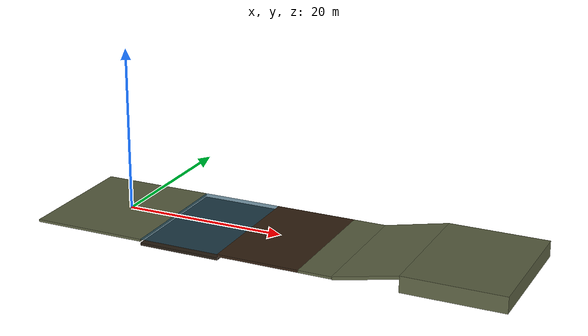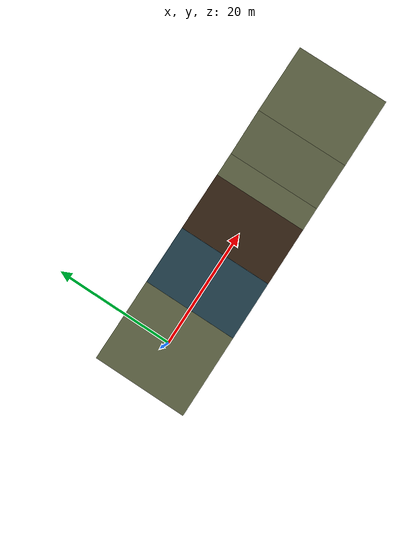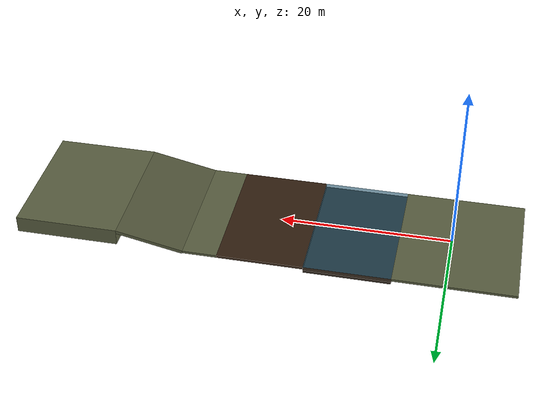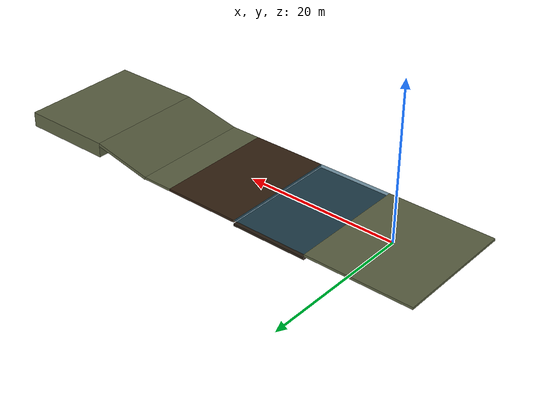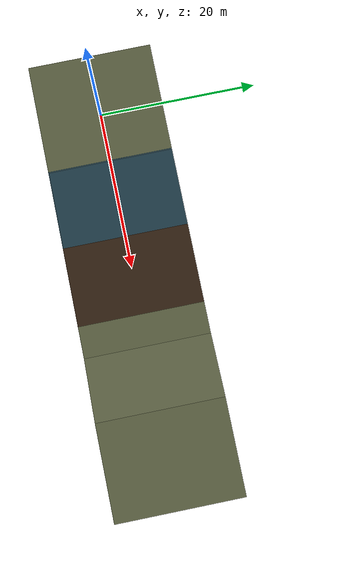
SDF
<sdf version="1.9">
 <world name="v3_transition_test">
  <physics name="1ms" type="dart">
   <max_step_size>0.001</max_step_size>
   <real_time_factor>1.0</real_time_factor>
   <dart><collision_detector>bullet</collision_detector></dart>
  </physics>
  <gravity>0 0 -9.81</gravity>
  <spherical_coordinates>
   <surface_model>EARTH_WGS84</surface_model>
   <latitude_deg>1.4466</latitude_deg>
   <longitude_deg>103.7300</longitude_deg>
   <elevation>0</elevation>
   <heading_deg>0</heading_deg>
  </spherical_coordinates>
  <plugin filename="gz-sim-physics-system" name="gz::sim::systems::Physics"/>
  <plugin filename="gz-sim-user-commands-system" name="gz::sim::systems::UserCommands"/>
  <plugin filename="gz-sim-scene-broadcaster-system" name="gz::sim::systems::SceneBroadcaster"/>
  <plugin filename="gz-sim-imu-system" name="gz::sim::systems::Imu"/>
  <plugin filename="gz-sim-navsat-system" name="gz::sim::systems::NavSat"/>
  <plugin filename="gz-sim-sensors-system" name="gz::sim::systems::Sensors">
   <render_engine>ogre2</render_engine>
  </plugin>
  <plugin filename="gz-sim-buoyancy-system" name="gz::sim::systems::Buoyancy">
   <graded_buoyancy>
    <default_density>1000</default_density>
    <density_change><above_depth>0.0</above_depth><density>1.2</density></density_change>
   </graded_buoyancy>
   <enable>hovercraft_v3::base_link</enable>
   <enable>hovercraft_v3::skirt</enable>
  </plugin>
  <plugin filename="tidal_vehicle_plugins" name="hover::TerrainZones">
   <ground_height>0.0</ground_height>
   <zone><name>channel</name><type>WATER</type><min>6 -8</min><max>16 8</max><level>0.0</level></zone>
   <zone><name>mudflat</name><type>MUD</type><min>16 -8</min><max>26 8</max></zone>
  </plugin>
  <plugin filename="tidal_vehicle_plugins" name="hover::ScriptedCommands">
   <command>
    <time>0.5</time>
    <topic>/model/hovercraft_v3/hover_enabled</topic>
    <type>gz.msgs.Boolean</type>
    <data>data: true</data>
   </command>
   <command>
    <time>3.0</time>
    <topic>/model/hovercraft_v3/tracks_cmd</topic>
    <type>gz.msgs.Double</type>
    <data>data: 0.250</data>
   </command>
   <command>
    <time>7.0</time>
    <topic>/model/hovercraft_v3/cmd_vel_hover</topic>
    <type>gz.msgs.Twist</type>
    <data>linear { x: 1.5 } angular { z: 0.0 }</data>
   </command>
   <command>
    <time>7.2</time>
    <topic>/model/hovercraft_v3/cmd_vel_hover</topic>
    <type>gz.msgs.Twist</type>
    <data>linear { x: 1.5 } angular { z: 0.0 }</data>
   </command>
   <command>
    <time>7.4</time>
    <topic>/model/hovercraft_v3/cmd_vel_hover</topic>
    <type>gz.msgs.Twist</type>
    <data>linear { x: 1.5 } angular { z: 0.0 }</data>
   </command>
   <command>
    <time>7.6</time>
    <topic>/model/hovercraft_v3/cmd_vel_hover</topic>
    <type>gz.msgs.Twist</type>
    <data>linear { x: 1.5 } angular { z: 0.0 }</data>
   </command>
   <command>
    <time>7.8</time>
    <topic>/model/hovercraft_v3/cmd_vel_hover</topic>
    <type>gz.msgs.Twist</type>
    <data>linear { x: 1.5 } angular { z: 0.0 }</data>
   </command>
   <command>
    <time>8.0</time>
    <topic>/model/hovercraft_v3/cmd_vel_hover</topic>
    <type>gz.msgs.Twist</type>
    <data>linear { x: 1.5 } angular { z: 0.0 }</data>
   </command>
   <command>
    <time>8.2</time>
    <topic>/model/hovercraft_v3/cmd_vel_hover</topic>
    <type>gz.msgs.Twist</type>
    <data>linear { x: 1.5 } angular { z: 0.0 }</data>
   </command>
   <command>
    <time>8.4</time>
    <topic>/model/hovercraft_v3/cmd_vel_hover</topic>
    <type>gz.msgs.Twist</type>
    <data>linear { x: 1.5 } angular { z: 0.0 }</data>
   </command>
   <command>
    <time>8.6</time>
    <topic>/model/hovercraft_v3/cmd_vel_hover</topic>
    <type>gz.msgs.Twist</type>
    <data>linear { x: 1.5 } angular { z: 0.0 }</data>
   </command>
   <command>
    <time>8.8</time>
    <topic>/model/hovercraft_v3/cmd_vel_hover</topic>
    <type>gz.msgs.Twist</type>
    <data>linear { x: 1.5 } angular { z: 0.0 }</data>
   </command>
   <command>
    <time>9.0</time>
    <topic>/model/hovercraft_v3/cmd_vel_hover</topic>
    <type>gz.msgs.Twist</type>
    <data>linear { x: 1.5 } angular { z: 0.0 }</data>
   </command>
   <command>
    <time>9.2</time>
    <topic>/model/hovercraft_v3/cmd_vel_hover</topic>
    <type>gz.msgs.Twist</type>
    <data>linear { x: 1.5 } angular { z: 0.0 }</data>
   </command>
   <command>
    <time>9.4</time>
    <topic>/model/hovercraft_v3/cmd_vel_hover</topic>
    <type>gz.msgs.Twist</type>
    <data>linear { x: 1.5 } angular { z: 0.0 }</data>
   </command>
   <command>
    <time>9.6</time>
    <topic>/model/hovercraft_v3/cmd_vel_hover</topic>
    <type>gz.msgs.Twist</type>
    <data>linear { x: 1.5 } angular { z: 0.0 }</data>
   </command>
   <command>
    <time>9.8</time>
    <topic>/model/hovercraft_v3/cmd_vel_hover</topic>
    <type>gz.msgs.Twist</type>
    <data>linear { x: 1.5 } angular { z: 0.0 }</data>
   </command>
   <command>
    <time>10.0</time>
    <topic>/model/hovercraft_v3/cmd_vel_hover</topic>
    <type>gz.msgs.Twist</type>
    <data>linear { x: 1.5 } angular { z: 0.0 }</data>
   </command>
   <command>
    <time>10.2</time>
    <topic>/model/hovercraft_v3/cmd_vel_hover</topic>
    <type>gz.msgs.Twist</type>
    <data>linear { x: 1.5 } angular { z: 0.0 }</data>
   </command>
   <command>
    <time>10.4</time>
    <topic>/model/hovercraft_v3/cmd_vel_hover</topic>
    <type>gz.msgs.Twist</type>
    <data>linear { x: 1.5 } angular { z: 0.0 }</data>
   </command>
   <command>
    <time>10.6</time>
    <topic>/model/hovercraft_v3/cmd_vel_hover</topic>
    <type>gz.msgs.Twist</type>
    <data>linear { x: 1.5 } angular { z: 0.0 }</data>
   </command>
   <command>
    <time>10.8</time>
    <topic>/model/hovercraft_v3/cmd_vel_hover</topic>
    <type>gz.msgs.Twist</type>
    <data>linear { x: 1.5 } angular { z: 0.0 }</data>
   </command>
   <command>
    <time>11.0</time>
    <topic>/model/hovercraft_v3/cmd_vel_hover</topic>
    <type>gz.msgs.Twist</type>
    <data>linear { x: 1.5 } angular { z: 0.0 }</data>
   </command>
   <command>
    <time>11.2</time>
    <topic>/model/hovercraft_v3/cmd_vel_hover</topic>
    <type>gz.msgs.Twist</type>
    <data>linear { x: 1.5 } angular { z: 0.0 }</data>
   </command>
   <command>
    <time>11.4</time>
    <topic>/model/hovercraft_v3/cmd_vel_hover</topic>
    <type>gz.msgs.Twist</type>
    <data>linear { x: 1.5 } angular { z: 0.0 }</data>
   </command>
   <command>
    <time>11.6</time>
    <topic>/model/hovercraft_v3/cmd_vel_hover</topic>
    <type>gz.msgs.Twist</type>
    <data>linear { x: 1.5 } angular { z: 0.0 }</data>
   </command>
   <command>
    <time>11.8</time>
    <topic>/model/hovercraft_v3/cmd_vel_hover</topic>
    <type>gz.msgs.Twist</type>
    <data>linear { x: 1.5 } angular { z: 0.0 }</data>
   </command>
   <command>
    <time>12.0</time>
    <topic>/model/hovercraft_v3/cmd_vel_hover</topic>
    <type>gz.msgs.Twist</type>
    <data>linear { x: 1.5 } angular { z: 0.0 }</data>
   </command>
   <command>
    <time>12.2</time>
    <topic>/model/hovercraft_v3/cmd_vel_hover</topic>
    <type>gz.msgs.Twist</type>
    <data>linear { x: 1.5 } angular { z: 0.0 }</data>
   </command>
   <command>
    <time>12.4</time>
    <topic>/model/hovercraft_v3/cmd_vel_hover</topic>
    <type>gz.msgs.Twist</type>
    <data>linear { x: 1.5 } angular { z: 0.0 }</data>
   </command>
   <command>
    <time>12.6</time>
    <topic>/model/hovercraft_v3/cmd_vel_hover</topic>
    <type>gz.msgs.Twist</type>
    <data>linear { x: 1.5 } angular { z: 0.0 }</data>
   </command>
   <command>
    <time>12.8</time>
    <topic>/model/hovercraft_v3/cmd_vel_hover</topic>
    <type>gz.msgs.Twist</type>
    <data>linear { x: 1.5 } angular { z: 0.0 }</data>
   </command>
   <command>
    <time>13.0</time>
    <topic>/model/hovercraft_v3/cmd_vel_hover</topic>
    <type>gz.msgs.Twist</type>
    <data>linear { x: 1.5 } angular { z: 0.0 }</data>
   </command>
   <command>
    <time>13.2</time>
    <topic>/model/hovercraft_v3/cmd_vel_hover</topic>
    <type>gz.msgs.Twist</type>
    <data>linear { x: 1.5 } angular { z: 0.0 }</data>
   </command>
   <command>
    <time>13.4</time>
    <topic>/model/hovercraft_v3/cmd_vel_hover</topic>
    <type>gz.msgs.Twist</type>
    <data>linear { x: 1.5 } angular { z: 0.0 }</data>
   </command>
   <command>
    <time>13.6</time>
    <topic>/model/hovercraft_v3/cmd_vel_hover</topic>
    <type>gz.msgs.Twist</type>
    <data>linear { x: 1.5 } angular { z: 0.0 }</data>
   </command>
   <command>
    <time>13.8</time>
    <topic>/model/hovercraft_v3/cmd_vel_hover</topic>
    <type>gz.msgs.Twist</type>
    <data>linear { x: 1.5 } angular { z: 0.0 }</data>
   </command>
   <command>
    <time>14.0</time>
    <topic>/model/hovercraft_v3/cmd_vel_hover</topic>
    <type>gz.msgs.Twist</type>
    <data>linear { x: 1.5 } angular { z: 0.0 }</data>
   </command>
   <command>
    <time>14.2</time>
    <topic>/model/hovercraft_v3/cmd_vel_hover</topic>
    <type>gz.msgs.Twist</type>
    <data>linear { x: 1.5 } angular { z: 0.0 }</data>
   </command>
   <command>
    <time>14.4</time>
    <topic>/model/hovercraft_v3/cmd_vel_hover</topic>
    <type>gz.msgs.Twist</type>
    <data>linear { x: 1.5 } angular { z: 0.0 }</data>
   </command>
   <command>
    <time>14.6</time>
    <topic>/model/hovercraft_v3/cmd_vel_hover</topic>
    <type>gz.msgs.Twist</type>
    <data>linear { x: 1.5 } angular { z: 0.0 }</data>
   </command>
   <command>
    <time>14.8</time>
    <topic>/model/hovercraft_v3/cmd_vel_hover</topic>
    <type>gz.msgs.Twist</type>
    <data>linear { x: 1.5 } angular { z: 0.0 }</data>
   </command>
   <command>
    <time>15.0</time>
    <topic>/model/hovercraft_v3/cmd_vel_hover</topic>
    <type>gz.msgs.Twist</type>
    <data>linear { x: 1.5 } angular { z: 0.0 }</data>
   </command>
   <command>
    <time>15.2</time>
    <topic>/model/hovercraft_v3/cmd_vel_hover</topic>
    <type>gz.msgs.Twist</type>
    <data>linear { x: 1.5 } angular { z: 0.0 }</data>
   </command>
   <command>
    <time>15.4</time>
    <topic>/model/hovercraft_v3/cmd_vel_hover</topic>
    <type>gz.msgs.Twist</type>
    <data>linear { x: 1.5 } angular { z: 0.0 }</data>
   </command>
   <command>
    <time>15.6</time>
    <topic>/model/hovercraft_v3/cmd_vel_hover</topic>
    <type>gz.msgs.Twist</type>
    <data>linear { x: 1.5 } angular { z: 0.0 }</data>
   </command>
   <command>
    <time>15.8</time>
    <topic>/model/hovercraft_v3/cmd_vel_hover</topic>
    <type>gz.msgs.Twist</type>
    <data>linear { x: 1.5 } angular { z: 0.0 }</data>
   </command>
   <command>
    <time>16.0</time>
    <topic>/model/hovercraft_v3/cmd_vel_hover</topic>
    <type>gz.msgs.Twist</type>
    <data>linear { x: 1.5 } angular { z: 0.0 }</data>
   </command>
   <command>
    <time>16.2</time>
    <topic>/model/hovercraft_v3/cmd_vel_hover</topic>
    <type>gz.msgs.Twist</type>
    <data>linear { x: 1.5 } angular { z: 0.0 }</data>
   </command>
   <command>
    <time>16.4</time>
    <topic>/model/hovercraft_v3/cmd_vel_hover</topic>
    <type>gz.msgs.Twist</type>
    <data>linear { x: 1.5 } angular { z: 0.0 }</data>
   </command>
   <command>
    <time>16.6</time>
    <topic>/model/hovercraft_v3/cmd_vel_hover</topic>
    <type>gz.msgs.Twist</type>
    <data>linear { x: 1.5 } angular { z: 0.0 }</data>
   </command>
   <command>
    <time>16.8</time>
    <topic>/model/hovercraft_v3/cmd_vel_hover</topic>
    <type>gz.msgs.Twist</type>
    <data>linear { x: 1.5 } angular { z: 0.0 }</data>
   </command>
   <command>
    <time>17.0</time>
    <topic>/model/hovercraft_v3/cmd_vel_hover</topic>
    <type>gz.msgs.Twist</type>
    <data>linear { x: 1.5 } angular { z: 0.0 }</data>
   </command>
   <command>
    <time>17.2</time>
    <topic>/model/hovercraft_v3/cmd_vel_hover</topic>
    <type>gz.msgs.Twist</type>
    <data>linear { x: 1.5 } angular { z: 0.0 }</data>
   </command>
   <command>
    <time>17.4</time>
    <topic>/model/hovercraft_v3/cmd_vel_hover</topic>
    <type>gz.msgs.Twist</type>
    <data>linear { x: 1.5 } angular { z: 0.0 }</data>
   </command>
   <command>
    <time>17.6</time>
    <topic>/model/hovercraft_v3/cmd_vel_hover</topic>
    <type>gz.msgs.Twist</type>
    <data>linear { x: 1.5 } angular { z: 0.0 }</data>
   </command>
   <command>
    <time>17.8</time>
    <topic>/model/hovercraft_v3/cmd_vel_hover</topic>
    <type>gz.msgs.Twist</type>
    <data>linear { x: 1.5 } angular { z: 0.0 }</data>
   </command>
   <command>
    <time>18.0</time>
    <topic>/model/hovercraft_v3/cmd_vel_hover</topic>
    <type>gz.msgs.Twist</type>
    <data>linear { x: 1.5 } angular { z: 0.0 }</data>
   </command>
   <command>
    <time>18.2</time>
    <topic>/model/hovercraft_v3/cmd_vel_hover</topic>
    <type>gz.msgs.Twist</type>
    <data>linear { x: 1.5 } angular { z: 0.0 }</data>
   </command>
   <command>
    <time>18.4</time>
    <topic>/model/hovercraft_v3/cmd_vel_hover</topic>
    <type>gz.msgs.Twist</type>
    <data>linear { x: 1.5 } angular { z: 0.0 }</data>
   </command>
   <command>
    <time>18.6</time>
    <topic>/model/hovercraft_v3/cmd_vel_hover</topic>
    <type>gz.msgs.Twist</type>
    <data>linear { x: 1.5 } angular { z: 0.0 }</data>
   </command>
   <command>
    <time>18.8</time>
    <topic>/model/hovercraft_v3/cmd_vel_hover</topic>
    <type>gz.msgs.Twist</type>
    <data>linear { x: 1.5 } angular { z: 0.0 }</data>
   </command>
   <command>
    <time>19.0</time>
    <topic>/model/hovercraft_v3/cmd_vel_hover</topic>
    <type>gz.msgs.Twist</type>
    <data>linear { x: 1.5 } angular { z: 0.0 }</data>
   </command>
   <command>
    <time>19.2</time>
    <topic>/model/hovercraft_v3/cmd_vel_hover</topic>
    <type>gz.msgs.Twist</type>
    <data>linear { x: 1.5 } angular { z: 0.0 }</data>
   </command>
   <command>
    <time>19.4</time>
    <topic>/model/hovercraft_v3/cmd_vel_hover</topic>
    <type>gz.msgs.Twist</type>
    <data>linear { x: 1.5 } angular { z: 0.0 }</data>
   </command>
   <command>
    <time>19.6</time>
    <topic>/model/hovercraft_v3/cmd_vel_hover</topic>
    <type>gz.msgs.Twist</type>
    <data>linear { x: 1.5 } angular { z: 0.0 }</data>
   </command>
   <command>
    <time>19.8</time>
    <topic>/model/hovercraft_v3/cmd_vel_hover</topic>
    <type>gz.msgs.Twist</type>
    <data>linear { x: 1.5 } angular { z: 0.0 }</data>
   </command>
   <command>
    <time>20.0</time>
    <topic>/model/hovercraft_v3/cmd_vel_hover</topic>
    <type>gz.msgs.Twist</type>
    <data>linear { x: 1.5 } angular { z: 0.0 }</data>
   </command>
   <command>
    <time>20.2</time>
    <topic>/model/hovercraft_v3/cmd_vel_hover</topic>
    <type>gz.msgs.Twist</type>
    <data>linear { x: 1.5 } angular { z: 0.0 }</data>
   </command>
   <command>
    <time>20.4</time>
    <topic>/model/hovercraft_v3/cmd_vel_hover</topic>
    <type>gz.msgs.Twist</type>
    <data>linear { x: 1.5 } angular { z: 0.0 }</data>
   </command>
   <command>
    <time>20.6</time>
    <topic>/model/hovercraft_v3/cmd_vel_hover</topic>
    <type>gz.msgs.Twist</type>
    <data>linear { x: 1.5 } angular { z: 0.0 }</data>
   </command>
   <command>
    <time>20.8</time>
    <topic>/model/hovercraft_v3/cmd_vel_hover</topic>
    <type>gz.msgs.Twist</type>
    <data>linear { x: 1.5 } angular { z: 0.0 }</data>
   </command>
   <command>
    <time>21.0</time>
    <topic>/model/hovercraft_v3/cmd_vel_hover</topic>
    <type>gz.msgs.Twist</type>
    <data>linear { x: 1.5 } angular { z: 0.0 }</data>
   </command>
   <command>
    <time>21.2</time>
    <topic>/model/hovercraft_v3/cmd_vel_hover</topic>
    <type>gz.msgs.Twist</type>
    <data>linear { x: 1.5 } angular { z: 0.0 }</data>
   </command>
   <command>
    <time>21.4</time>
    <topic>/model/hovercraft_v3/cmd_vel_hover</topic>
    <type>gz.msgs.Twist</type>
    <data>linear { x: 1.5 } angular { z: 0.0 }</data>
   </command>
   <command>
    <time>21.6</time>
    <topic>/model/hovercraft_v3/cmd_vel_hover</topic>
    <type>gz.msgs.Twist</type>
    <data>linear { x: 1.5 } angular { z: 0.0 }</data>
   </command>
   <command>
    <time>21.8</time>
    <topic>/model/hovercraft_v3/cmd_vel_hover</topic>
    <type>gz.msgs.Twist</type>
    <data>linear { x: 1.5 } angular { z: 0.0 }</data>
   </command>
   <command>
    <time>22.0</time>
    <topic>/model/hovercraft_v3/cmd_vel_hover</topic>
    <type>gz.msgs.Twist</type>
    <data>linear { x: 1.5 } angular { z: 0.0 }</data>
   </command>
   <command>
    <time>22.2</time>
    <topic>/model/hovercraft_v3/cmd_vel_hover</topic>
    <type>gz.msgs.Twist</type>
    <data>linear { x: 1.5 } angular { z: 0.0 }</data>
   </command>
   <command>
    <time>22.4</time>
    <topic>/model/hovercraft_v3/cmd_vel_hover</topic>
    <type>gz.msgs.Twist</type>
    <data>linear { x: 1.5 } angular { z: 0.0 }</data>
   </command>
   <command>
    <time>22.6</time>
    <topic>/model/hovercraft_v3/cmd_vel_hover</topic>
    <type>gz.msgs.Twist</type>
    <data>linear { x: 1.5 } angular { z: 0.0 }</data>
   </command>
   <command>
    <time>22.8</time>
    <topic>/model/hovercraft_v3/cmd_vel_hover</topic>
    <type>gz.msgs.Twist</type>
    <data>linear { x: 1.5 } angular { z: 0.0 }</data>
   </command>
   <command>
    <time>23.0</time>
    <topic>/model/hovercraft_v3/cmd_vel_hover</topic>
    <type>gz.msgs.Twist</type>
    <data>linear { x: 1.5 } angular { z: 0.0 }</data>
   </command>
   <command>
    <time>23.2</time>
    <topic>/model/hovercraft_v3/cmd_vel_hover</topic>
    <type>gz.msgs.Twist</type>
    <data>linear { x: 1.5 } angular { z: 0.0 }</data>
   </command>
   <command>
    <time>23.4</time>
    <topic>/model/hovercraft_v3/cmd_vel_hover</topic>
    <type>gz.msgs.Twist</type>
    <data>linear { x: 1.5 } angular { z: 0.0 }</data>
   </command>
   <command>
    <time>23.6</time>
    <topic>/model/hovercraft_v3/cmd_vel_hover</topic>
    <type>gz.msgs.Twist</type>
    <data>linear { x: 1.5 } angular { z: 0.0 }</data>
   </command>
   <command>
    <time>23.8</time>
    <topic>/model/hovercraft_v3/cmd_vel_hover</topic>
    <type>gz.msgs.Twist</type>
    <data>linear { x: 1.5 } angular { z: 0.0 }</data>
   </command>
   <command>
    <time>24.0</time>
    <topic>/model/hovercraft_v3/cmd_vel_hover</topic>
    <type>gz.msgs.Twist</type>
    <data>linear { x: 1.5 } angular { z: 0.0 }</data>
   </command>
   <command>
    <time>24.2</time>
    <topic>/model/hovercraft_v3/cmd_vel_hover</topic>
    <type>gz.msgs.Twist</type>
    <data>linear { x: 1.5 } angular { z: 0.0 }</data>
   </command>
   <command>
    <time>24.4</time>
    <topic>/model/hovercraft_v3/cmd_vel_hover</topic>
    <type>gz.msgs.Twist</type>
    <data>linear { x: 1.5 } angular { z: 0.0 }</data>
   </command>
   <command>
    <time>24.6</time>
    <topic>/model/hovercraft_v3/cmd_vel_hover</topic>
    <type>gz.msgs.Twist</type>
    <data>linear { x: 1.5 } angular { z: 0.0 }</data>
   </command>
   <command>
    <time>24.8</time>
    <topic>/model/hovercraft_v3/cmd_vel_hover</topic>
    <type>gz.msgs.Twist</type>
    <data>linear { x: 1.5 } angular { z: 0.0 }</data>
   </command>
   <command>
    <time>25.0</time>
    <topic>/model/hovercraft_v3/cmd_vel_hover</topic>
    <type>gz.msgs.Twist</type>
    <data>linear { x: 0.0 } angular { z: 0.0 }</data>
   </command>
   <command>
    <time>25.2</time>
    <topic>/model/hovercraft_v3/cmd_vel_hover</topic>
    <type>gz.msgs.Twist</type>
    <data>linear { x: 0.0 } angular { z: 0.0 }</data>
   </command>
   <command>
    <time>25.4</time>
    <topic>/model/hovercraft_v3/cmd_vel_hover</topic>
    <type>gz.msgs.Twist</type>
    <data>linear { x: 0.0 } angular { z: 0.0 }</data>
   </command>
   <command>
    <time>25.6</time>
    <topic>/model/hovercraft_v3/cmd_vel_hover</topic>
    <type>gz.msgs.Twist</type>
    <data>linear { x: 0.0 } angular { z: 0.0 }</data>
   </command>
   <command>
    <time>25.8</time>
    <topic>/model/hovercraft_v3/cmd_vel_hover</topic>
    <type>gz.msgs.Twist</type>
    <data>linear { x: 0.0 } angular { z: 0.0 }</data>
   </command>
   <command>
    <time>26.0</time>
    <topic>/model/hovercraft_v3/cmd_vel_hover</topic>
    <type>gz.msgs.Twist</type>
    <data>linear { x: 0.0 } angular { z: 0.0 }</data>
   </command>
   <command>
    <time>26.2</time>
    <topic>/model/hovercraft_v3/cmd_vel_hover</topic>
    <type>gz.msgs.Twist</type>
    <data>linear { x: 0.0 } angular { z: 0.0 }</data>
   </command>
   <command>
    <time>26.4</time>
    <topic>/model/hovercraft_v3/cmd_vel_hover</topic>
    <type>gz.msgs.Twist</type>
    <data>linear { x: 0.0 } angular { z: 0.0 }</data>
   </command>
   <command>
    <time>26.6</time>
    <topic>/model/hovercraft_v3/cmd_vel_hover</topic>
    <type>gz.msgs.Twist</type>
    <data>linear { x: 0.0 } angular { z: 0.0 }</data>
   </command>
   <command>
    <time>26.8</time>
    <topic>/model/hovercraft_v3/cmd_vel_hover</topic>
    <type>gz.msgs.Twist</type>
    <data>linear { x: 0.0 } angular { z: 0.0 }</data>
   </command>
   <command>
    <time>27.0</time>
    <topic>/model/hovercraft_v3/cmd_vel_hover</topic>
    <type>gz.msgs.Twist</type>
    <data>linear { x: 0.0 } angular { z: 0.0 }</data>
   </command>
   <command>
    <time>27.2</time>
    <topic>/model/hovercraft_v3/cmd_vel_hover</topic>
    <type>gz.msgs.Twist</type>
    <data>linear { x: 0.0 } angular { z: 0.0 }</data>
   </command>
   <command>
    <time>27.4</time>
    <topic>/model/hovercraft_v3/cmd_vel_hover</topic>
    <type>gz.msgs.Twist</type>
    <data>linear { x: 0.0 } angular { z: 0.0 }</data>
   </command>
   <command>
    <time>27.6</time>
    <topic>/model/hovercraft_v3/cmd_vel_hover</topic>
    <type>gz.msgs.Twist</type>
    <data>linear { x: 0.0 } angular { z: 0.0 }</data>
   </command>
   <command>
    <time>27.8</time>
    <topic>/model/hovercraft_v3/cmd_vel_hover</topic>
    <type>gz.msgs.Twist</type>
    <data>linear { x: 0.0 } angular { z: 0.0 }</data>
   </command>
   <command>
    <time>28.0</time>
    <topic>/model/hovercraft_v3/cmd_vel_hover</topic>
    <type>gz.msgs.Twist</type>
    <data>linear { x: 0.0 } angular { z: 0.0 }</data>
   </command>
   <command>
    <time>28.2</time>
    <topic>/model/hovercraft_v3/cmd_vel_hover</topic>
    <type>gz.msgs.Twist</type>
    <data>linear { x: 0.0 } angular { z: 0.0 }</data>
   </command>
   <command>
    <time>28.4</time>
    <topic>/model/hovercraft_v3/cmd_vel_hover</topic>
    <type>gz.msgs.Twist</type>
    <data>linear { x: 0.0 } angular { z: 0.0 }</data>
   </command>
   <command>
    <time>28.6</time>
    <topic>/model/hovercraft_v3/cmd_vel_hover</topic>
    <type>gz.msgs.Twist</type>
    <data>linear { x: 0.0 } angular { z: 0.0 }</data>
   </command>
   <command>
    <time>28.8</time>
    <topic>/model/hovercraft_v3/cmd_vel_hover</topic>
    <type>gz.msgs.Twist</type>
    <data>linear { x: 0.0 } angular { z: 0.0 }</data>
   </command>
   <command>
    <time>29.0</time>
    <topic>/model/hovercraft_v3/cmd_vel_hover</topic>
    <type>gz.msgs.Twist</type>
    <data>linear { x: 0.0 } angular { z: 0.0 }</data>
   </command>
   <command>
    <time>29.2</time>
    <topic>/model/hovercraft_v3/cmd_vel_hover</topic>
    <type>gz.msgs.Twist</type>
    <data>linear { x: 0.0 } angular { z: 0.0 }</data>
   </command>
   <command>
    <time>29.4</time>
    <topic>/model/hovercraft_v3/cmd_vel_hover</topic>
    <type>gz.msgs.Twist</type>
    <data>linear { x: 0.0 } angular { z: 0.0 }</data>
   </command>
   <command>
    <time>29.6</time>
    <topic>/model/hovercraft_v3/cmd_vel_hover</topic>
    <type>gz.msgs.Twist</type>
    <data>linear { x: 0.0 } angular { z: 0.0 }</data>
   </command>
   <command>
    <time>29.8</time>
    <topic>/model/hovercraft_v3/cmd_vel_hover</topic>
    <type>gz.msgs.Twist</type>
    <data>linear { x: 0.0 } angular { z: 0.0 }</data>
   </command>
   <command>
    <time>30.0</time>
    <topic>/model/hovercraft_v3/cmd_vel_hover</topic>
    <type>gz.msgs.Twist</type>
    <data>linear { x: 0.0 } angular { z: 0.0 }</data>
   </command>
   <command>
    <time>30.2</time>
    <topic>/model/hovercraft_v3/cmd_vel_hover</topic>
    <type>gz.msgs.Twist</type>
    <data>linear { x: 0.0 } angular { z: 0.0 }</data>
   </command>
   <command>
    <time>30.4</time>
    <topic>/model/hovercraft_v3/cmd_vel_hover</topic>
    <type>gz.msgs.Twist</type>
    <data>linear { x: 0.0 } angular { z: 0.0 }</data>
   </command>
   <command>
    <time>30.6</time>
    <topic>/model/hovercraft_v3/cmd_vel_hover</topic>
    <type>gz.msgs.Twist</type>
    <data>linear { x: 0.0 } angular { z: 0.0 }</data>
   </command>
   <command>
    <time>30.8</time>
    <topic>/model/hovercraft_v3/cmd_vel_hover</topic>
    <type>gz.msgs.Twist</type>
    <data>linear { x: 0.0 } angular { z: 0.0 }</data>
   </command>
   <command>
    <time>31.0</time>
    <topic>/model/hovercraft_v3/cmd_vel_hover</topic>
    <type>gz.msgs.Twist</type>
    <data>linear { x: 0.0 } angular { z: 0.0 }</data>
   </command>
   <command>
    <time>31.2</time>
    <topic>/model/hovercraft_v3/cmd_vel_hover</topic>
    <type>gz.msgs.Twist</type>
    <data>linear { x: 0.0 } angular { z: 0.0 }</data>
   </command>
   <command>
    <time>31.4</time>
    <topic>/model/hovercraft_v3/cmd_vel_hover</topic>
    <type>gz.msgs.Twist</type>
    <data>linear { x: 0.0 } angular { z: 0.0 }</data>
   </command>
   <command>
    <time>31.6</time>
    <topic>/model/hovercraft_v3/cmd_vel_hover</topic>
    <type>gz.msgs.Twist</type>
    <data>linear { x: 0.0 } angular { z: 0.0 }</data>
   </command>
   <command>
    <time>31.8</time>
    <topic>/model/hovercraft_v3/cmd_vel_hover</topic>
    <type>gz.msgs.Twist</type>
    <data>linear { x: 0.0 } angular { z: 0.0 }</data>
   </command>
   <command>
    <time>32.0</time>
    <topic>/model/hovercraft_v3/cmd_vel_hover</topic>
    <type>gz.msgs.Twist</type>
    <data>linear { x: 0.0 } angular { z: 0.0 }</data>
   </command>
   <command>
    <time>32.2</time>
    <topic>/model/hovercraft_v3/cmd_vel_hover</topic>
    <type>gz.msgs.Twist</type>
    <data>linear { x: 0.0 } angular { z: 0.0 }</data>
   </command>
   <command>
    <time>32.4</time>
    <topic>/model/hovercraft_v3/cmd_vel_hover</topic>
    <type>gz.msgs.Twist</type>
    <data>linear { x: 0.0 } angular { z: 0.0 }</data>
   </command>
   <command>
    <time>32.6</time>
    <topic>/model/hovercraft_v3/cmd_vel_hover</topic>
    <type>gz.msgs.Twist</type>
    <data>linear { x: 0.0 } angular { z: 0.0 }</data>
   </command>
   <command>
    <time>32.8</time>
    <topic>/model/hovercraft_v3/cmd_vel_hover</topic>
    <type>gz.msgs.Twist</type>
    <data>linear { x: 0.0 } angular { z: 0.0 }</data>
   </command>
   <command>
    <time>33.0</time>
    <topic>/model/hovercraft_v3/tracks_cmd</topic>
    <type>gz.msgs.Double</type>
    <data>data: 0.000</data>
   </command>
   <command>
    <time>36.0</time>
    <topic>/model/hovercraft_v3/lift_share</topic>
    <type>gz.msgs.Double</type>
    <data>data: 0.4</data>
   </command>
   <command>
    <time>40.0</time>
    <topic>/model/hovercraft_v3/cmd_vel</topic>
    <type>gz.msgs.Twist</type>
    <data>linear { x: 1.0 } angular { z: 0.0 }</data>
   </command>
   <command>
    <time>40.2</time>
    <topic>/model/hovercraft_v3/cmd_vel</topic>
    <type>gz.msgs.Twist</type>
    <data>linear { x: 1.0 } angular { z: 0.0 }</data>
   </command>
   <command>
    <time>40.4</time>
    <topic>/model/hovercraft_v3/cmd_vel</topic>
    <type>gz.msgs.Twist</type>
    <data>linear { x: 1.0 } angular { z: 0.0 }</data>
   </command>
   <command>
    <time>40.6</time>
    <topic>/model/hovercraft_v3/cmd_vel</topic>
    <type>gz.msgs.Twist</type>
    <data>linear { x: 1.0 } angular { z: 0.0 }</data>
   </command>
   <command>
    <time>40.8</time>
    <topic>/model/hovercraft_v3/cmd_vel</topic>
    <type>gz.msgs.Twist</type>
    <data>linear { x: 1.0 } angular { z: 0.0 }</data>
   </command>
   <command>
    <time>41.0</time>
    <topic>/model/hovercraft_v3/cmd_vel</topic>
    <type>gz.msgs.Twist</type>
    <data>linear { x: 1.0 } angular { z: 0.0 }</data>
   </command>
   <command>
    <time>41.2</time>
    <topic>/model/hovercraft_v3/cmd_vel</topic>
    <type>gz.msgs.Twist</type>
    <data>linear { x: 1.0 } angular { z: 0.0 }</data>
   </command>
   <command>
    <time>41.4</time>
    <topic>/model/hovercraft_v3/cmd_vel</topic>
    <type>gz.msgs.Twist</type>
    <data>linear { x: 1.0 } angular { z: 0.0 }</data>
   </command>
   <command>
    <time>41.6</time>
    <topic>/model/hovercraft_v3/cmd_vel</topic>
    <type>gz.msgs.Twist</type>
    <data>linear { x: 1.0 } angular { z: 0.0 }</data>
   </command>
   <command>
    <time>41.8</time>
    <topic>/model/hovercraft_v3/cmd_vel</topic>
    <type>gz.msgs.Twist</type>
    <data>linear { x: 1.0 } angular { z: 0.0 }</data>
   </command>
   <command>
    <time>42.0</time>
    <topic>/model/hovercraft_v3/cmd_vel</topic>
    <type>gz.msgs.Twist</type>
    <data>linear { x: 1.0 } angular { z: 0.0 }</data>
   </command>
   <command>
    <time>42.2</time>
    <topic>/model/hovercraft_v3/cmd_vel</topic>
    <type>gz.msgs.Twist</type>
    <data>linear { x: 1.0 } angular { z: 0.0 }</data>
   </command>
   <command>
    <time>42.4</time>
    <topic>/model/hovercraft_v3/cmd_vel</topic>
    <type>gz.msgs.Twist</type>
    <data>linear { x: 1.0 } angular { z: 0.0 }</data>
   </command>
   <command>
    <time>42.6</time>
    <topic>/model/hovercraft_v3/cmd_vel</topic>
    <type>gz.msgs.Twist</type>
    <data>linear { x: 1.0 } angular { z: 0.0 }</data>
   </command>
   <command>
    <time>42.8</time>
    <topic>/model/hovercraft_v3/cmd_vel</topic>
    <type>gz.msgs.Twist</type>
    <data>linear { x: 1.0 } angular { z: 0.0 }</data>
   </command>
   <command>
    <time>43.0</time>
    <topic>/model/hovercraft_v3/cmd_vel</topic>
    <type>gz.msgs.Twist</type>
    <data>linear { x: 1.0 } angular { z: 0.0 }</data>
   </command>
   <command>
    <time>43.2</time>
    <topic>/model/hovercraft_v3/cmd_vel</topic>
    <type>gz.msgs.Twist</type>
    <data>linear { x: 1.0 } angular { z: 0.0 }</data>
   </command>
   <command>
    <time>43.4</time>
    <topic>/model/hovercraft_v3/cmd_vel</topic>
    <type>gz.msgs.Twist</type>
    <data>linear { x: 1.0 } angular { z: 0.0 }</data>
   </command>
   <command>
    <time>43.6</time>
    <topic>/model/hovercraft_v3/cmd_vel</topic>
    <type>gz.msgs.Twist</type>
    <data>linear { x: 1.0 } angular { z: 0.0 }</data>
   </command>
   <command>
    <time>43.8</time>
    <topic>/model/hovercraft_v3/cmd_vel</topic>
    <type>gz.msgs.Twist</type>
    <data>linear { x: 1.0 } angular { z: 0.0 }</data>
   </command>
   <command>
    <time>44.0</time>
    <topic>/model/hovercraft_v3/cmd_vel</topic>
    <type>gz.msgs.Twist</type>
    <data>linear { x: 1.0 } angular { z: 0.0 }</data>
   </command>
   <command>
    <time>44.2</time>
    <topic>/model/hovercraft_v3/cmd_vel</topic>
    <type>gz.msgs.Twist</type>
    <data>linear { x: 1.0 } angular { z: 0.0 }</data>
   </command>
   <command>
    <time>44.4</time>
    <topic>/model/hovercraft_v3/cmd_vel</topic>
    <type>gz.msgs.Twist</type>
    <data>linear { x: 1.0 } angular { z: 0.0 }</data>
   </command>
   <command>
    <time>44.6</time>
    <topic>/model/hovercraft_v3/cmd_vel</topic>
    <type>gz.msgs.Twist</type>
    <data>linear { x: 1.0 } angular { z: 0.0 }</data>
   </command>
   <command>
    <time>44.8</time>
    <topic>/model/hovercraft_v3/cmd_vel</topic>
    <type>gz.msgs.Twist</type>
    <data>linear { x: 1.0 } angular { z: 0.0 }</data>
   </command>
   <command>
    <time>45.0</time>
    <topic>/model/hovercraft_v3/cmd_vel</topic>
    <type>gz.msgs.Twist</type>
    <data>linear { x: 1.0 } angular { z: 0.0 }</data>
   </command>
   <command>
    <time>45.2</time>
    <topic>/model/hovercraft_v3/cmd_vel</topic>
    <type>gz.msgs.Twist</type>
    <data>linear { x: 1.0 } angular { z: 0.0 }</data>
   </command>
   <command>
    <time>45.4</time>
    <topic>/model/hovercraft_v3/cmd_vel</topic>
    <type>gz.msgs.Twist</type>
    <data>linear { x: 1.0 } angular { z: 0.0 }</data>
   </command>
   <command>
    <time>45.6</time>
    <topic>/model/hovercraft_v3/cmd_vel</topic>
    <type>gz.msgs.Twist</type>
    <data>linear { x: 1.0 } angular { z: 0.0 }</data>
   </command>
   <command>
    <time>45.8</time>
    <topic>/model/hovercraft_v3/cmd_vel</topic>
    <type>gz.msgs.Twist</type>
    <data>linear { x: 1.0 } angular { z: 0.0 }</data>
   </command>
   <command>
    <time>46.0</time>
    <topic>/model/hovercraft_v3/cmd_vel</topic>
    <type>gz.msgs.Twist</type>
    <data>linear { x: 1.0 } angular { z: 0.0 }</data>
   </command>
   <command>
    <time>46.2</time>
    <topic>/model/hovercraft_v3/cmd_vel</topic>
    <type>gz.msgs.Twist</type>
    <data>linear { x: 1.0 } angular { z: 0.0 }</data>
   </command>
   <command>
    <time>46.4</time>
    <topic>/model/hovercraft_v3/cmd_vel</topic>
    <type>gz.msgs.Twist</type>
    <data>linear { x: 1.0 } angular { z: 0.0 }</data>
   </command>
   <command>
    <time>46.6</time>
    <topic>/model/hovercraft_v3/cmd_vel</topic>
    <type>gz.msgs.Twist</type>
    <data>linear { x: 1.0 } angular { z: 0.0 }</data>
   </command>
   <command>
    <time>46.8</time>
    <topic>/model/hovercraft_v3/cmd_vel</topic>
    <type>gz.msgs.Twist</type>
    <data>linear { x: 1.0 } angular { z: 0.0 }</data>
   </command>
   <command>
    <time>47.0</time>
    <topic>/model/hovercraft_v3/cmd_vel</topic>
    <type>gz.msgs.Twist</type>
    <data>linear { x: 1.0 } angular { z: 0.0 }</data>
   </command>
   <command>
    <time>47.2</time>
    <topic>/model/hovercraft_v3/cmd_vel</topic>
    <type>gz.msgs.Twist</type>
    <data>linear { x: 1.0 } angular { z: 0.0 }</data>
   </command>
   <command>
    <time>47.4</time>
    <topic>/model/hovercraft_v3/cmd_vel</topic>
    <type>gz.msgs.Twist</type>
    <data>linear { x: 1.0 } angular { z: 0.0 }</data>
   </command>
   <command>
    <time>47.6</time>
    <topic>/model/hovercraft_v3/cmd_vel</topic>
    <type>gz.msgs.Twist</type>
    <data>linear { x: 1.0 } angular { z: 0.0 }</data>
   </command>
   <command>
    <time>47.8</time>
    <topic>/model/hovercraft_v3/cmd_vel</topic>
    <type>gz.msgs.Twist</type>
    <data>linear { x: 1.0 } angular { z: 0.0 }</data>
   </command>
   <command>
    <time>48.0</time>
    <topic>/model/hovercraft_v3/cmd_vel</topic>
    <type>gz.msgs.Twist</type>
    <data>linear { x: 1.0 } angular { z: 0.0 }</data>
   </command>
   <command>
    <time>48.2</time>
    <topic>/model/hovercraft_v3/cmd_vel</topic>
    <type>gz.msgs.Twist</type>
    <data>linear { x: 1.0 } angular { z: 0.0 }</data>
   </command>
   <command>
    <time>48.4</time>
    <topic>/model/hovercraft_v3/cmd_vel</topic>
    <type>gz.msgs.Twist</type>
    <data>linear { x: 1.0 } angular { z: 0.0 }</data>
   </command>
   <command>
    <time>48.6</time>
    <topic>/model/hovercraft_v3/cmd_vel</topic>
    <type>gz.msgs.Twist</type>
    <data>linear { x: 1.0 } angular { z: 0.0 }</data>
   </command>
   <command>
    <time>48.8</time>
    <topic>/model/hovercraft_v3/cmd_vel</topic>
    <type>gz.msgs.Twist</type>
    <data>linear { x: 1.0 } angular { z: 0.0 }</data>
   </command>
   <command>
    <time>49.0</time>
    <topic>/model/hovercraft_v3/cmd_vel</topic>
    <type>gz.msgs.Twist</type>
    <data>linear { x: 1.0 } angular { z: 0.0 }</data>
   </command>
   <command>
    <time>49.2</time>
    <topic>/model/hovercraft_v3/cmd_vel</topic>
    <type>gz.msgs.Twist</type>
    <data>linear { x: 1.0 } angular { z: 0.0 }</data>
   </command>
   <command>
    <time>49.4</time>
    <topic>/model/hovercraft_v3/cmd_vel</topic>
    <type>gz.msgs.Twist</type>
    <data>linear { x: 1.0 } angular { z: 0.0 }</data>
   </command>
   <command>
    <time>49.6</time>
    <topic>/model/hovercraft_v3/cmd_vel</topic>
    <type>gz.msgs.Twist</type>
    <data>linear { x: 1.0 } angular { z: 0.0 }</data>
   </command>
   <command>
    <time>49.8</time>
    <topic>/model/hovercraft_v3/cmd_vel</topic>
    <type>gz.msgs.Twist</type>
    <data>linear { x: 1.0 } angular { z: 0.0 }</data>
   </command>
   <command>
    <time>50.0</time>
    <topic>/model/hovercraft_v3/cmd_vel</topic>
    <type>gz.msgs.Twist</type>
    <data>linear { x: 1.0 } angular { z: 0.0 }</data>
   </command>
   <command>
    <time>50.2</time>
    <topic>/model/hovercraft_v3/cmd_vel</topic>
    <type>gz.msgs.Twist</type>
    <data>linear { x: 1.0 } angular { z: 0.0 }</data>
   </command>
   <command>
    <time>50.4</time>
    <topic>/model/hovercraft_v3/cmd_vel</topic>
    <type>gz.msgs.Twist</type>
    <data>linear { x: 1.0 } angular { z: 0.0 }</data>
   </command>
   <command>
    <time>50.6</time>
    <topic>/model/hovercraft_v3/cmd_vel</topic>
    <type>gz.msgs.Twist</type>
    <data>linear { x: 1.0 } angular { z: 0.0 }</data>
   </command>
   <command>
    <time>50.8</time>
    <topic>/model/hovercraft_v3/cmd_vel</topic>
    <type>gz.msgs.Twist</type>
    <data>linear { x: 1.0 } angular { z: 0.0 }</data>
   </command>
   <command>
    <time>51.0</time>
    <topic>/model/hovercraft_v3/cmd_vel</topic>
    <type>gz.msgs.Twist</type>
    <data>linear { x: 1.0 } angular { z: 0.0 }</data>
   </command>
   <command>
    <time>51.2</time>
    <topic>/model/hovercraft_v3/cmd_vel</topic>
    <type>gz.msgs.Twist</type>
    <data>linear { x: 1.0 } angular { z: 0.0 }</data>
   </command>
   <command>
    <time>51.4</time>
    <topic>/model/hovercraft_v3/cmd_vel</topic>
    <type>gz.msgs.Twist</type>
    <data>linear { x: 1.0 } angular { z: 0.0 }</data>
   </command>
   <command>
    <time>51.6</time>
    <topic>/model/hovercraft_v3/cmd_vel</topic>
    <type>gz.msgs.Twist</type>
    <data>linear { x: 1.0 } angular { z: 0.0 }</data>
   </command>
   <command>
    <time>51.8</time>
    <topic>/model/hovercraft_v3/cmd_vel</topic>
    <type>gz.msgs.Twist</type>
    <data>linear { x: 1.0 } angular { z: 0.0 }</data>
   </command>
   <command>
    <time>52.0</time>
    <topic>/model/hovercraft_v3/cmd_vel</topic>
    <type>gz.msgs.Twist</type>
    <data>linear { x: 1.0 } angular { z: 0.0 }</data>
   </command>
   <command>
    <time>52.2</time>
    <topic>/model/hovercraft_v3/cmd_vel</topic>
    <type>gz.msgs.Twist</type>
    <data>linear { x: 1.0 } angular { z: 0.0 }</data>
   </command>
   <command>
    <time>52.4</time>
    <topic>/model/hovercraft_v3/cmd_vel</topic>
    <type>gz.msgs.Twist</type>
    <data>linear { x: 1.0 } angular { z: 0.0 }</data>
   </command>
   <command>
    <time>52.6</time>
    <topic>/model/hovercraft_v3/cmd_vel</topic>
    <type>gz.msgs.Twist</type>
    <data>linear { x: 1.0 } angular { z: 0.0 }</data>
   </command>
   <command>
    <time>52.8</time>
    <topic>/model/hovercraft_v3/cmd_vel</topic>
    <type>gz.msgs.Twist</type>
    <data>linear { x: 1.0 } angular { z: 0.0 }</data>
   </command>
   <command>
    <time>53.0</time>
    <topic>/model/hovercraft_v3/cmd_vel</topic>
    <type>gz.msgs.Twist</type>
    <data>linear { x: 1.0 } angular { z: 0.0 }</data>
   </command>
   <command>
    <time>53.2</time>
    <topic>/model/hovercraft_v3/cmd_vel</topic>
    <type>gz.msgs.Twist</type>
    <data>linear { x: 1.0 } angular { z: 0.0 }</data>
   </command>
   <command>
    <time>53.4</time>
    <topic>/model/hovercraft_v3/cmd_vel</topic>
    <type>gz.msgs.Twist</type>
    <data>linear { x: 1.0 } angular { z: 0.0 }</data>
   </command>
   <command>
    <time>53.6</time>
    <topic>/model/hovercraft_v3/cmd_vel</topic>
    <type>gz.msgs.Twist</type>
    <data>linear { x: 1.0 } angular { z: 0.0 }</data>
   </command>
   <command>
    <time>53.8</time>
    <topic>/model/hovercraft_v3/cmd_vel</topic>
    <type>gz.msgs.Twist</type>
    <data>linear { x: 1.0 } angular { z: 0.0 }</data>
   </command>
   <command>
    <time>54.0</time>
    <topic>/model/hovercraft_v3/cmd_vel</topic>
    <type>gz.msgs.Twist</type>
    <data>linear { x: 1.0 } angular { z: 0.0 }</data>
   </command>
   <command>
    <time>54.2</time>
    <topic>/model/hovercraft_v3/cmd_vel</topic>
    <type>gz.msgs.Twist</type>
    <data>linear { x: 1.0 } angular { z: 0.0 }</data>
   </command>
   <command>
    <time>54.4</time>
    <topic>/model/hovercraft_v3/cmd_vel</topic>
    <type>gz.msgs.Twist</type>
    <data>linear { x: 1.0 } angular { z: 0.0 }</data>
   </command>
   <command>
    <time>54.6</time>
    <topic>/model/hovercraft_v3/cmd_vel</topic>
    <type>gz.msgs.Twist</type>
    <data>linear { x: 1.0 } angular { z: 0.0 }</data>
   </command>
   <command>
    <time>54.8</time>
    <topic>/model/hovercraft_v3/cmd_vel</topic>
    <type>gz.msgs.Twist</type>
    <data>linear { x: 1.0 } angular { z: 0.0 }</data>
   </command>
   <command>
    <time>55.0</time>
    <topic>/model/hovercraft_v3/cmd_vel</topic>
    <type>gz.msgs.Twist</type>
    <data>linear { x: 1.0 } angular { z: 0.0 }</data>
   </command>
   <command>
    <time>55.2</time>
    <topic>/model/hovercraft_v3/cmd_vel</topic>
    <type>gz.msgs.Twist</type>
    <data>linear { x: 1.0 } angular { z: 0.0 }</data>
   </command>
   <command>
    <time>55.4</time>
    <topic>/model/hovercraft_v3/cmd_vel</topic>
    <type>gz.msgs.Twist</type>
    <data>linear { x: 1.0 } angular { z: 0.0 }</data>
   </command>
   <command>
    <time>55.6</time>
    <topic>/model/hovercraft_v3/cmd_vel</topic>
    <type>gz.msgs.Twist</type>
    <data>linear { x: 1.0 } angular { z: 0.0 }</data>
   </command>
   <command>
    <time>55.8</time>
    <topic>/model/hovercraft_v3/cmd_vel</topic>
    <type>gz.msgs.Twist</type>
    <data>linear { x: 1.0 } angular { z: 0.0 }</data>
   </command>
   <command>
    <time>56.0</time>
    <topic>/model/hovercraft_v3/cmd_vel</topic>
    <type>gz.msgs.Twist</type>
    <data>linear { x: 1.0 } angular { z: 0.0 }</data>
   </command>
   <command>
    <time>56.2</time>
    <topic>/model/hovercraft_v3/cmd_vel</topic>
    <type>gz.msgs.Twist</type>
    <data>linear { x: 1.0 } angular { z: 0.0 }</data>
   </command>
   <command>
    <time>56.4</time>
    <topic>/model/hovercraft_v3/cmd_vel</topic>
    <type>gz.msgs.Twist</type>
    <data>linear { x: 1.0 } angular { z: 0.0 }</data>
   </command>
   <command>
    <time>56.6</time>
    <topic>/model/hovercraft_v3/cmd_vel</topic>
    <type>gz.msgs.Twist</type>
    <data>linear { x: 1.0 } angular { z: 0.0 }</data>
   </command>
   <command>
    <time>56.8</time>
    <topic>/model/hovercraft_v3/cmd_vel</topic>
    <type>gz.msgs.Twist</type>
    <data>linear { x: 1.0 } angular { z: 0.0 }</data>
   </command>
   <command>
    <time>57.0</time>
    <topic>/model/hovercraft_v3/cmd_vel</topic>
    <type>gz.msgs.Twist</type>
    <data>linear { x: 1.0 } angular { z: 0.0 }</data>
   </command>
   <command>
    <time>57.2</time>
    <topic>/model/hovercraft_v3/cmd_vel</topic>
    <type>gz.msgs.Twist</type>
    <data>linear { x: 1.0 } angular { z: 0.0 }</data>
   </command>
   <command>
    <time>57.4</time>
    <topic>/model/hovercraft_v3/cmd_vel</topic>
    <type>gz.msgs.Twist</type>
    <data>linear { x: 1.0 } angular { z: 0.0 }</data>
   </command>
   <command>
    <time>57.6</time>
    <topic>/model/hovercraft_v3/cmd_vel</topic>
    <type>gz.msgs.Twist</type>
    <data>linear { x: 1.0 } angular { z: 0.0 }</data>
   </command>
   <command>
    <time>57.8</time>
    <topic>/model/hovercraft_v3/cmd_vel</topic>
    <type>gz.msgs.Twist</type>
    <data>linear { x: 1.0 } angular { z: 0.0 }</data>
   </command>
   <command>
    <time>58.0</time>
    <topic>/model/hovercraft_v3/cmd_vel</topic>
    <type>gz.msgs.Twist</type>
    <data>linear { x: 1.0 } angular { z: 0.0 }</data>
   </command>
   <command>
    <time>58.2</time>
    <topic>/model/hovercraft_v3/cmd_vel</topic>
    <type>gz.msgs.Twist</type>
    <data>linear { x: 1.0 } angular { z: 0.0 }</data>
   </command>
   <command>
    <time>58.4</time>
    <topic>/model/hovercraft_v3/cmd_vel</topic>
    <type>gz.msgs.Twist</type>
    <data>linear { x: 1.0 } angular { z: 0.0 }</data>
   </command>
   <command>
    <time>58.6</time>
    <topic>/model/hovercraft_v3/cmd_vel</topic>
    <type>gz.msgs.Twist</type>
    <data>linear { x: 1.0 } angular { z: 0.0 }</data>
   </command>
   <command>
    <time>58.8</time>
    <topic>/model/hovercraft_v3/cmd_vel</topic>
    <type>gz.msgs.Twist</type>
    <data>linear { x: 1.0 } angular { z: 0.0 }</data>
   </command>
   <command>
    <time>59.0</time>
    <topic>/model/hovercraft_v3/cmd_vel</topic>
    <type>gz.msgs.Twist</type>
    <data>linear { x: 1.0 } angular { z: 0.0 }</data>
   </command>
   <command>
    <time>59.2</time>
    <topic>/model/hovercraft_v3/cmd_vel</topic>
    <type>gz.msgs.Twist</type>
    <data>linear { x: 1.0 } angular { z: 0.0 }</data>
   </command>
   <command>
    <time>59.4</time>
    <topic>/model/hovercraft_v3/cmd_vel</topic>
    <type>gz.msgs.Twist</type>
    <data>linear { x: 1.0 } angular { z: 0.0 }</data>
   </command>
   <command>
    <time>59.6</time>
    <topic>/model/hovercraft_v3/cmd_vel</topic>
    <type>gz.msgs.Twist</type>
    <data>linear { x: 1.0 } angular { z: 0.0 }</data>
   </command>
   <command>
    <time>59.8</time>
    <topic>/model/hovercraft_v3/cmd_vel</topic>
    <type>gz.msgs.Twist</type>
    <data>linear { x: 1.0 } angular { z: 0.0 }</data>
   </command>
   <command>
    <time>60.0</time>
    <topic>/model/hovercraft_v3/cmd_vel</topic>
    <type>gz.msgs.Twist</type>
    <data>linear { x: 0.0 } angular { z: 0.0 }</data>
   </command>
   <command>
    <time>60.2</time>
    <topic>/model/hovercraft_v3/cmd_vel</topic>
    <type>gz.msgs.Twist</type>
    <data>linear { x: 0.0 } angular { z: 0.0 }</data>
   </command>
   <command>
    <time>60.4</time>
    <topic>/model/hovercraft_v3/cmd_vel</topic>
    <type>gz.msgs.Twist</type>
    <data>linear { x: 0.0 } angular { z: 0.0 }</data>
   </command>
   <command>
    <time>60.6</time>
    <topic>/model/hovercraft_v3/cmd_vel</topic>
    <type>gz.msgs.Twist</type>
    <data>linear { x: 0.0 } angular { z: 0.0 }</data>
   </command>
   <command>
    <time>60.8</time>
    <topic>/model/hovercraft_v3/cmd_vel</topic>
    <type>gz.msgs.Twist</type>
    <data>linear { x: 0.0 } angular { z: 0.0 }</data>
   </command>
   <command>
    <time>61.0</time>
    <topic>/model/hovercraft_v3/cmd_vel</topic>
    <type>gz.msgs.Twist</type>
    <data>linear { x: 0.0 } angular { z: 0.0 }</data>
   </command>
   <command>
    <time>61.2</time>
    <topic>/model/hovercraft_v3/cmd_vel</topic>
    <type>gz.msgs.Twist</type>
    <data>linear { x: 0.0 } angular { z: 0.0 }</data>
   </command>
   <command>
    <time>61.4</time>
    <topic>/model/hovercraft_v3/cmd_vel</topic>
    <type>gz.msgs.Twist</type>
    <data>linear { x: 0.0 } angular { z: 0.0 }</data>
   </command>
   <command>
    <time>61.6</time>
    <topic>/model/hovercraft_v3/cmd_vel</topic>
    <type>gz.msgs.Twist</type>
    <data>linear { x: 0.0 } angular { z: 0.0 }</data>
   </command>
   <command>
    <time>61.8</time>
    <topic>/model/hovercraft_v3/cmd_vel</topic>
    <type>gz.msgs.Twist</type>
    <data>linear { x: 0.0 } angular { z: 0.0 }</data>
   </command>
   <command>
    <time>62.0</time>
    <topic>/model/hovercraft_v3/cmd_vel</topic>
    <type>gz.msgs.Twist</type>
    <data>linear { x: 0.0 } angular { z: 0.0 }</data>
   </command>
   <command>
    <time>62.2</time>
    <topic>/model/hovercraft_v3/cmd_vel</topic>
    <type>gz.msgs.Twist</type>
    <data>linear { x: 0.0 } angular { z: 0.0 }</data>
   </command>
   <command>
    <time>62.4</time>
    <topic>/model/hovercraft_v3/cmd_vel</topic>
    <type>gz.msgs.Twist</type>
    <data>linear { x: 0.0 } angular { z: 0.0 }</data>
   </command>
   <command>
    <time>62.6</time>
    <topic>/model/hovercraft_v3/cmd_vel</topic>
    <type>gz.msgs.Twist</type>
    <data>linear { x: 0.0 } angular { z: 0.0 }</data>
   </command>
   <command>
    <time>62.8</time>
    <topic>/model/hovercraft_v3/cmd_vel</topic>
    <type>gz.msgs.Twist</type>
    <data>linear { x: 0.0 } angular { z: 0.0 }</data>
   </command>
  </plugin>
  <scene><ambient>0.5 0.5 0.5 1</ambient><background>0.7 0.8 0.9 1</background><grid>false</grid></scene>
  <light type="directional" name="sun">
   <pose>0 0 10 0 0 0</pose>
   <diffuse>0.9 0.9 0.85 1</diffuse>
   <specular>0.2 0.2 0.2 1</specular>
   <direction>-0.4 0.3 -0.9</direction>
  </light>
  <model name="launch">
   <static>true</static>
   <pose>-1.0 0.0 -0.15 0 0 0</pose>
   <link name="link">
    <collision name="c">
     <geometry><box><size>14 16 0.3</size></box></geometry>
     <surface><friction><ode><mu>1.0</mu><mu2>1.0</mu2></ode></friction></surface>
    </collision>
    <visual name="v">
     <geometry><box><size>14 16 0.3</size></box></geometry>
     <material>
      <ambient>0.36 0.38 0.26 1</ambient>
      <diffuse>0.36 0.38 0.26 1</diffuse>
      <specular>0.05 0.05 0.05 1</specular>
     </material>
    </visual>
   </link>
  </model>
  <model name="channel_bed">
   <static>true</static>
   <pose>11.0 0.0 -0.6 0 0 0</pose>
   <link name="link">
    <collision name="c">
     <geometry><box><size>10 16 0.3</size></box></geometry>
     <surface><friction><ode><mu>0.3</mu><mu2>0.3</mu2></ode></friction></surface>
    </collision>
    <visual name="v">
     <geometry><box><size>10 16 0.3</size></box></geometry>
     <material>
      <ambient>0.16 0.12 0.08 1</ambient>
      <diffuse>0.16 0.12 0.08 1</diffuse>
      <specular>0.05 0.05 0.05 1</specular>
     </material>
    </visual>
   </link>
  </model>
  <model name="channel_water">
   <static>true</static>
   <pose>11.0 0.0 0.0 0 0 0</pose>
   <link name="link">
    <visual name="v">
     <geometry><box><size>10 16 0.01</size></box></geometry>
     <transparency>0.35</transparency>
     <material>
      <ambient>0.15 0.35 0.45 0.65</ambient>
      <diffuse>0.15 0.35 0.45 0.65</diffuse>
      <specular>0.6 0.6 0.6 1</specular>
     </material>
    </visual>
   </link>
  </model>
  <model name="mudflat">
   <static>true</static>
   <pose>21.0 0.0 -0.15 0 0 0</pose>
   <link name="link">
    <collision name="c">
     <geometry><box><size>10 16 0.3</size></box></geometry>
     <surface><friction><ode><mu>0.08</mu><mu2>0.08</mu2></ode></friction></surface>
    </collision>
    <visual name="v">
     <geometry><box><size>10 16 0.3</size></box></geometry>
     <material>
      <ambient>0.20 0.13 0.07 1</ambient>
      <diffuse>0.20 0.13 0.07 1</diffuse>
      <specular>0.3 0.3 0.3 1</specular>
     </material>
    </visual>
   </link>
  </model>
  <model name="bank">
   <static>true</static>
   <pose>28.0 0.0 -0.15 0 0 0</pose>
   <link name="link">
    <collision name="c">
     <geometry><box><size>4 16 0.3</size></box></geometry>
     <surface><friction><ode><mu>1.0</mu><mu2>1.0</mu2></ode></friction></surface>
    </collision>
    <visual name="v">
     <geometry><box><size>4 16 0.3</size></box></geometry>
     <material>
      <ambient>0.36 0.38 0.26 1</ambient>
      <diffuse>0.36 0.38 0.26 1</diffuse>
      <specular>0.05 0.05 0.05 1</specular>
     </material>
    </visual>
   </link>
  </model>
  <model name="bank_slope">
   <static>true</static>
   <pose>33.9542 0.0 0.6360 0 -0.20944 0</pose>
   <link name="link">
    <collision name="c">
     <geometry><box><size>8.0 16 0.4</size></box></geometry>
     <surface><friction><ode><mu>1.0</mu><mu2>1.0</mu2></ode></friction></surface>
    </collision>
    <visual name="v">
     <geometry><box><size>8.0 16 0.4</size></box></geometry>
     <material><ambient>0.36 0.38 0.26 1</ambient><diffuse>0.36 0.38 0.26 1</diffuse></material>
    </visual>
   </link>
  </model>
  <model name="bank_slope_plateau">
   <static>true</static>
   <pose>43.825180805870446 0.0 0.6816467632710373 0 0 0</pose>
   <link name="link">
    <collision name="c">
     <geometry><box><size>12.0 16 1.9632935265420748</size></box></geometry>
     <surface><friction><ode><mu>1.0</mu><mu2>1.0</mu2></ode></friction></surface>
    </collision>
    <visual name="v">
     <geometry><box><size>12.0 16 1.9632935265420748</size></box></geometry>
     <material>
      <ambient>0.36 0.38 0.26 1</ambient>
      <diffuse>0.36 0.38 0.26 1</diffuse>
      <specular>0.05 0.05 0.05 1</specular>
     </material>
    </visual>
   </link>
  </model>
 </world>
</sdf>
